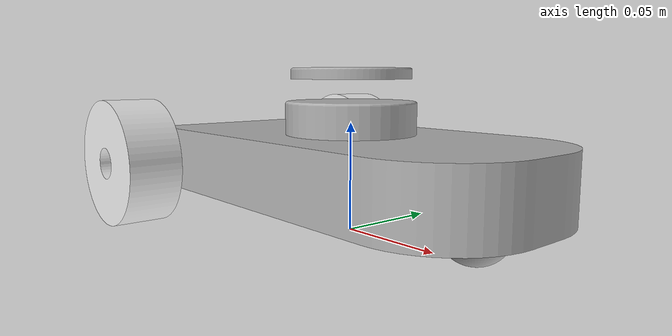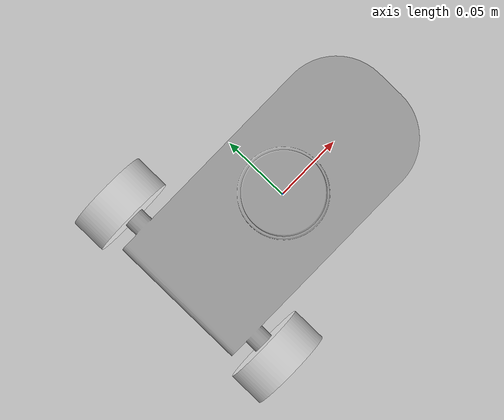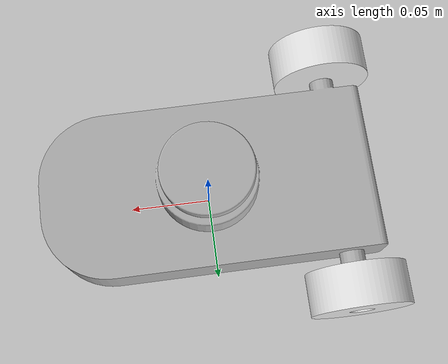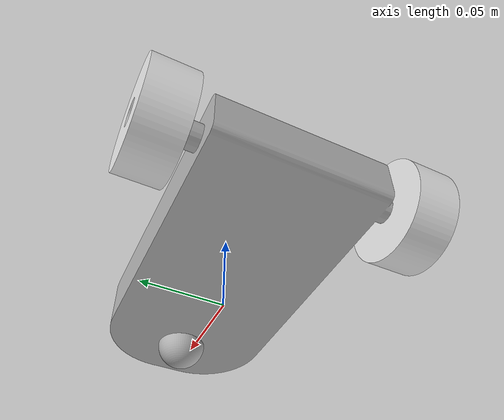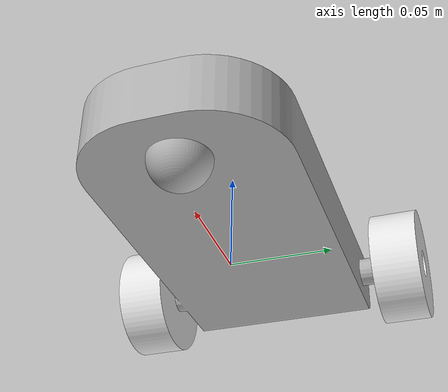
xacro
<?xml version="1.0" ?>
<robot name="ROS_BOT_1" xmlns:xacro="http://www.ros.org/wiki/xacro">

<xacro:include filename="$(find ROS_BOT_2_description)/models/urdf/materials.xacro" />
<xacro:include filename="$(find ROS_BOT_2_description)/models/urdf/ROS_BOT_1.trans" />
<xacro:include filename="$(find ROS_BOT_2_description)/models/urdf/ROS_BOT_1.gazebo" />
<link name="base_link">
  <inertial>
    <origin xyz="-0.0032884426660520173 0.0 0.0315267801089402" rpy="0 0 0"/>
    <mass value="0.6616847081595042"/>
    <inertia ixx="0.00058" iyy="0.002021" izz="0.002466" ixy="-0.0" iyz="0.0" ixz="-3e-06"/>
  </inertial>
  <visual>
    <origin xyz="0 0 0" rpy="0 0 0"/>
    <geometry>
      <mesh filename="file://$(find ROS_BOT_2_description)/models/meshes/base_link.stl" scale="0.001 0.001 0.001"/>
    </geometry>
    <material name="silver"/>
  </visual>
  <collision>
    <origin xyz="0 0 0" rpy="0 0 0"/>
    <geometry>
      <mesh filename="file://$(find ROS_BOT_2_description)/models/meshes/base_link.stl" scale="0.001 0.001 0.001"/>
    </geometry>
  </collision>
</link>

<link name="right_wheel_1">
  <inertial>
    <origin xyz="-1.1921412329529701e-09 -0.012500000000000025 -1.9623191960249642e-14" rpy="0 0 0"/>
    <mass value="0.061629212134093336"/>
    <inertia ixx="1.8e-05" iyy="2.9e-05" izz="1.8e-05" ixy="0.0" iyz="-0.0" ixz="0.0"/>
  </inertial>
  <visual>
    <origin xyz="0.08 0.06 -0.03" rpy="0 0 0"/>
    <geometry>
      <mesh filename="file://$(find ROS_BOT_2_description)/models/meshes/right_wheel_1.stl" scale="0.001 0.001 0.001"/>
    </geometry>
    <material name="black"/>
  </visual>
  <collision>
    <origin xyz="0.08 0.06 -0.03" rpy="0 0 0"/>
    <geometry>
      <mesh filename="file://$(find ROS_BOT_2_description)/models/meshes/right_wheel_1.stl" scale="0.001 0.001 0.001"/>
    </geometry>
  </collision>
</link>

<link name="left_wheel_1">
  <inertial>
    <origin xyz="-1.1921451603669198e-09 0.012500000000000025 1.734723475976807e-17" rpy="0 0 0"/>
    <mass value="0.06162921213409332"/>
    <inertia ixx="1.8e-05" iyy="2.9e-05" izz="1.8e-05" ixy="0.0" iyz="0.0" ixz="0.0"/>
  </inertial>
  <visual>
    <origin xyz="0.08 -0.06 -0.03" rpy="0 0 0"/>
    <geometry>
      <mesh filename="file://$(find ROS_BOT_2_description)/models/meshes/left_wheel_1.stl" scale="0.001 0.001 0.001"/>
    </geometry>
    <material name="black"/>
  </visual>
  <collision>
    <origin xyz="0.08 -0.06 -0.03" rpy="0 0 0"/>
    <geometry>
      <mesh filename="file://$(find ROS_BOT_2_description)/models/meshes/left_wheel_1.stl" scale="0.001 0.001 0.001"/>
    </geometry>
  </collision>
</link>

<link name="castor_1">
  <inertial>
    <origin xyz="-0.030000000000000013 -1.2565154297139817e-17 -0.005625000000000007" rpy="0 0 0"/>
    <mass value="0.060012273665199026"/>
    <inertia ixx="4e-06" iyy="4e-06" izz="5e-06" ixy="-0.0" iyz="-0.0" ixz="-0.0"/>
  </inertial>
  <visual>
    <origin xyz="-0.1 -0.0 -0.015" rpy="0 0 0"/>
    <geometry>
      <mesh filename="file://$(find ROS_BOT_2_description)/models/meshes/castor_1.stl" scale="0.001 0.001 0.001"/>
    </geometry>
    <material name="silver"/>
  </visual>
  <collision>
    <origin xyz="-0.1 -0.0 -0.015" rpy="0 0 0"/>
    <geometry>
      <mesh filename="file://$(find ROS_BOT_2_description)/models/meshes/castor_1.stl" scale="0.001 0.001 0.001"/>
    </geometry>
  </collision>
</link>

<link name="lidar_1">
  <inertial>
    <origin xyz="-6.0000056025074064e-18 0.0 0.0024929317211731875" rpy="0 0 0"/>
    <mass value="0.01634246766268295"/>
    <inertia ixx="3e-06" iyy="3e-06" izz="6e-06" ixy="0.0" iyz="0.0" ixz="0.0"/>
  </inertial>
  <visual>
    <origin xyz="-0.0 -0.0 -0.06" rpy="0 0 0"/>
    <geometry>
      <mesh filename="file://$(find ROS_BOT_2_description)/models/meshes/lidar_1.stl" scale="0.001 0.001 0.001"/>
    </geometry>
    <material name="silver"/>
  </visual>
  <collision>
    <origin xyz="-0.0 -0.0 -0.06" rpy="0 0 0"/>
    <geometry>
      <mesh filename="file://$(find ROS_BOT_2_description)/models/meshes/lidar_1.stl" scale="0.001 0.001 0.001"/>
    </geometry>
  </collision>
</link>

<link name="camera">
</link>

<joint name="camera_joint" type="fixed">
  <origin xyz="0.0 0.0 0.1" rpy="0 0 0"/>
  <parent link="base_link"/>
  <child link="camera"/>
</joint>

<joint name="right_wheel_joint" type="continuous">
  <origin xyz="-0.08 -0.06 0.03" rpy="0 0 0"/>
  <parent link="base_link"/>
  <child link="right_wheel_1"/>
  <axis xyz="0.0 1.0 0.0"/>
</joint>

<joint name="left_wheel_joint" type="continuous">
  <origin xyz="-0.08 0.06 0.03" rpy="0 0 0"/>
  <parent link="base_link"/>
  <child link="left_wheel_1"/>
  <axis xyz="0.0 1.0 0.0"/>
</joint>

<joint name="castor_joint" type="fixed">
  <origin xyz="0.1 0.0 0.015" rpy="0 0 0"/>
  <parent link="base_link"/>
  <child link="castor_1"/>
</joint>

<joint name="lidar_joint" type="fixed">
  <origin xyz="0.0 0.0 0.07" rpy="0 0 0"/>
  <parent link="base_link"/>
  <child link="lidar_1"/>
</joint>

</robot>

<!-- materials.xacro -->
<robot name="ROS_BOT_1" xmlns:xacro="http://www.ros.org/wiki/xacro" >

<material name="silver">
  <color rgba="0.700 0.700 0.700 1.000"/>
</material>

<material name="black">
  <color rgba="0.92 0.92 0.92 1.000"/>
</material>

</robot>

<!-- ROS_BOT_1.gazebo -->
<robot name="ROS_BOT_1" xmlns:xacro="http://www.ros.org/wiki/xacro" >

<xacro:property name="body_color" value="Gazebo/ZincYellow" />
<xacro:property name="wheels_color" value="Gazebo/Red" />
<xacro:property name="castor_color" value="Gazebo/White" />
<xacro:property name="lidar_color" value="Gazebo/Purple" />
<gazebo reference="base_link">
  <material>${body_color}</material>
  <mu1>0.2</mu1>
  <mu2>0.2</mu2>
  <self_collide>true</self_collide>
  <gravity>true</gravity>
</gazebo>

<gazebo reference="right_wheel_1">
  <material>${wheels_color}</material>
  <mu1>1.0</mu1>
  <mu2>1.0</mu2>
  <self_collide>true</self_collide>
</gazebo>

<gazebo reference="left_wheel_1">
  <material>${wheels_color}</material>
  <mu1>1.0</mu1>
  <mu2>1.0</mu2>
  <self_collide>true</self_collide>
</gazebo>

<gazebo reference="castor_1">
  <material>${castor_color}</material>
  <mu1>0.2</mu1>
  <mu2>0.2</mu2>
  <self_collide>true</self_collide>
</gazebo>

<gazebo reference="lidar_1">
  <material>${lidar_color}</material>
  <mu1>0.2</mu1>
  <mu2>0.2</mu2>
  <self_collide>true</self_collide>
</gazebo>

<!-- Differential drive plugin for gazebo -->
<gazebo>
	<plugin name='diff_drive' filename='libgazebo_ros_diff_drive.so'>
		<ros>
		</ros>

		<!-- wheels -->
		<left_joint>left_wheel_joint</left_joint>
		<right_joint>right_wheel_joint</right_joint>

		<!-- kinematics -->
		<wheel_separation>0.145</wheel_separation>
		<wheel_diameter>0.06</wheel_diameter>

		<!-- limits -->
		<max_wheel_torque>20</max_wheel_torque>
		<max_wheel_acceleration>1.0</max_wheel_acceleration>

		<!-- output -->
		<publish_odom>true</publish_odom>
		<publish_odom_tf>true</publish_odom_tf>
		<publish_wheel_tf>false</publish_wheel_tf>

		<odometry_frame>odom</odometry_frame>
		<robot_base_frame>base_link</robot_base_frame>
	</plugin>
</gazebo>

<gazebo reference="lidar_1">
	<sensor name="ydlidar" type="ray">
		<always_on>true</always_on>
		<visualize>false</visualize>
		<update_rate>10</update_rate>
		<ray>
		<scan>
			<horizontal>
			<samples>720</samples>
			<resolution>1.000000</resolution>
			<min_angle>-3.14</min_angle>
			<max_angle>3.14</max_angle>
			</horizontal>
		</scan>
		<range>
			<min>0.05</min>
			<max>20.0</max>
			<resolution>0.015000</resolution>
		</range>
		<noise>
			<type>gaussian</type>
			<mean>0.0</mean>
			<stddev>0.01</stddev>
		</noise>
		</ray>
		<plugin name="scan" filename="libgazebo_ros_ray_sensor.so">
		<ros>
			<remapping>~/out:=scan</remapping>
		</ros>
		<output_type>sensor_msgs/LaserScan</output_type>
		<frame_name>lidar_1</frame_name>
		</plugin>
	</sensor>
</gazebo>

<!--  ##########  CAMERA PLUGIN  ##########  -->

<gazebo reference="camera">
<sensor type="camera" name="camera">
	<update_rate>30.0</update_rate>
	<camera name="head">
	<horizontal_fov>1.3962634</horizontal_fov>
	<image>
		<width>800</width>
		<height>800</height>
		<format>R8G8B8</format>
	</image>
	<clip>
		<near>0.02</near>
		<far>300</far>
	</clip>
	<noise>
		<type>gaussian</type>
		<!-- Noise is sampled independently per pixel on each frame.
			That pixel's noise value is added to each of its color
			channels, which at that point lie in the range [0,1]. -->
		<mean>0.0</mean>
		<stddev>0.007</stddev>
	</noise>
	</camera>
	<plugin name="camera_controller" filename="libgazebo_ros_camera.so">
	<alwaysOn>true</alwaysOn>
	<updateRate>0.0</updateRate>
	<cameraName>camera</cameraName>
	<imageTopicName>image_raw</imageTopicName>
	<cameraInfoTopicName>camera_info</cameraInfoTopicName>
	<frameName>camera</frameName>
	<hackBaseline>0.07</hackBaseline>
	<distortionK1>0.0</distortionK1>
	<distortionK2>0.0</distortionK2>
	<distortionK3>0.0</distortionK3>
	<distortionT1>0.0</distortionT1>
	<distortionT2>0.0</distortionT2>
	</plugin>
</sensor>
</gazebo>

</robot>
